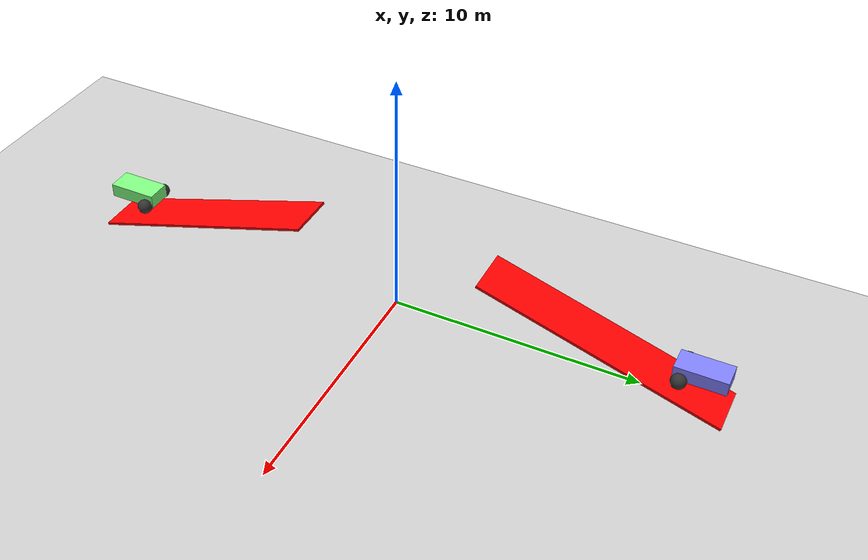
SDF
<?xml version="1.0" ?>
<sdf version="1.6">
  <world name="car_collision">
    <physics name="1ms" type="bullet">
      <max_step_size>0.001</max_step_size>
      <real_time_factor>1.0</real_time_factor>
    </physics>
    <plugin
      filename="libignition-gazebo-physics-system.so"
      name="ignition::gazebo::systems::Physics">
    </plugin>
    <plugin
      filename="libignition-gazebo-user-commands-system.so"
      name="ignition::gazebo::systems::UserCommands">
    </plugin>
    <plugin
      filename="libignition-gazebo-scene-broadcaster-system.so"
      name="ignition::gazebo::systems::SceneBroadcaster">
    </plugin>

    <gui fullscreen="0">

      <!-- 3D scene -->
      <plugin filename="GzScene3D" name="3D View">
        <ignition-gui>
          <title>3D View</title>
          <property type="bool" key="showTitleBar">false</property>
          <property type="string" key="state">docked</property>
        </ignition-gui>

        <engine>ogre2</engine>
        <scene>scene</scene>
        <ambient_light>0.4 0.4 0.4</ambient_light>
        <background_color>0.8 0.8 0.8</background_color>
        <camera_pose>-6 0 6 0 0.5 0</camera_pose>
      </plugin>

      <!-- World control -->
      <plugin filename="WorldControl" name="World control">
        <ignition-gui>
          <title>World control</title>
          <property type="bool" key="showTitleBar">false</property>
          <property type="bool" key="resizable">false</property>
          <property type="double" key="height">72</property>
          <property type="double" key="width">121</property>
          <property type="double" key="z">1</property>

          <property type="string" key="state">floating</property>
          <anchors target="3D View">
            <line own="left" target="left"/>
            <line own="bottom" target="bottom"/>
          </anchors>
        </ignition-gui>

        <play_pause>true</play_pause>
        <step>true</step>
        <start_paused>true</start_paused>
        <service>/world/car_collision/control</service>
        <stats_topic>/world/car_collision/stats</stats_topic>

      </plugin>

      <!-- World statistics -->
      <plugin filename="WorldStats" name="World stats">
        <ignition-gui>
          <title>World stats</title>
          <property type="bool" key="showTitleBar">false</property>
          <property type="bool" key="resizable">false</property>
          <property type="double" key="height">110</property>
          <property type="double" key="width">290</property>
          <property type="double" key="z">1</property>

          <property type="string" key="state">floating</property>
          <anchors target="3D View">
            <line own="right" target="right"/>
            <line own="bottom" target="bottom"/>
          </anchors>
        </ignition-gui>

        <sim_time>true</sim_time>
        <real_time>true</real_time>
        <real_time_factor>true</real_time_factor>
        <iterations>true</iterations>
        <topic>/world/car_collision/stats</topic>

      </plugin>

    </gui>

    <light type="directional" name="sun">
      <cast_shadows>true</cast_shadows>
      <pose>0 0 10 0 0 0</pose>
      <diffuse>1 1 1 1</diffuse>
      <specular>0.5 0.5 0.5 1</specular>
      <attenuation>
        <range>1000</range>
        <constant>0.9</constant>
        <linear>0.01</linear>
        <quadratic>0.001</quadratic>
      </attenuation>
      <direction>-0.5 0.1 -0.9</direction>
    </light>

    <model name="ground_plane">
      <static>true</static>
      <link name="link">
        <collision name="collision">
          <geometry>
            <plane>
              <normal>0 0 1</normal>
            </plane>
          </geometry>
          <surface>
            <bounce>
              <restitution_coefficient>0</restitution_coefficient>
            </bounce>
          </surface>
        </collision>
        <visual name="visual">
          <geometry>
            <plane>
              <normal>0 0 1</normal>
              <size>100 100</size>
            </plane>
          </geometry>
          <material>
            <ambient>0.8 0.8 0.8 1</ambient>
            <diffuse>0.8 0.8 0.8 1</diffuse>
            <specular>0.8 0.8 0.8 1</specular>
          </material>
        </visual>
      </link>
    </model>

    <model name="ramp">
      <static>true</static>
      <pose>0 8.5 1.5 -0.3 0 0</pose>
      <link name="box_link">
        <inertial>
          <inertia>
            <ixx>1</ixx>
            <ixy>0</ixy>
            <ixz>0</ixz>
            <iyy>1</iyy>
            <iyz>0</iyz>
            <izz>1</izz>
          </inertia>
          <mass>1.0</mass>
        </inertial>
        <collision name="box_collision">
          <geometry>
            <box>
              <size>2 10 0.1</size>
            </box>
          </geometry>
        </collision>

        <visual name="box_visual">
          <geometry>
            <box>
              <size>2 10 0.1</size>
            </box>
          </geometry>
          <material>
            <ambient>1 0 0 1</ambient>
            <diffuse>1 0 0 1</diffuse>
            <specular>1 0 0 1</specular>
          </material>
        </visual>
      </link>
    </model>

    <model name="ramp2">
      <static>true</static>
      <pose>0 -8.5 1.5 0.3 0 0</pose>
      <link name="box_link">
        <inertial>
          <inertia>
            <ixx>1</ixx>
            <ixy>0</ixy>
            <ixz>0</ixz>
            <iyy>1</iyy>
            <iyz>0</iyz>
            <izz>1</izz>
          </inertia>
          <mass>1.0</mass>
        </inertial>
        <collision name="box_collision">
          <geometry>
            <box>
              <size>2 10 0.1</size>
            </box>
          </geometry>
        </collision>

        <visual name="box_visual">
          <geometry>
            <box>
              <size>2 10 0.1</size>
            </box>
          </geometry>
          <material>
            <ambient>1 0 0 1</ambient>
            <diffuse>1 0 0 1</diffuse>
            <specular>1 0 0 1</specular>
          </material>
        </visual>
      </link>
    </model>

    <model name='vehicle_blue'>
      <pose>0 12 1.325 0 -0 -1.5708</pose>

      <link name='chassis'>
        <pose>-0.151427 -0 0.175 0 -0 0</pose>
        <inertial>
          <mass>1.14395</mass>
          <inertia>
            <ixx>0.126164</ixx>
            <ixy>0</ixy>
            <ixz>0</ixz>
            <iyy>0.416519</iyy>
            <iyz>0</iyz>
            <izz>0.481014</izz>
          </inertia>
        </inertial>
        <visual name='visual'>
          <geometry>
            <box>
              <size>2.01142 1 0.568726</size>
            </box>
          </geometry>
          <material>
            <ambient>0.5 0.5 1.0 1</ambient>
            <diffuse>0.5 0.5 1.0 1</diffuse>
            <specular>0.0 0.0 1.0 1</specular>
          </material>
        </visual>
        <collision name='collision'>
          <geometry>
            <box>
              <size>2.01142 1 0.568726</size>
            </box>
          </geometry>
          <surface>
            <bounce>
              <restitution_coefficient>1</restitution_coefficient>
            </bounce>
          </surface>
        </collision>
      </link>

      <link name='left_wheel'>
        <pose>0.554283 0.625029 -0.025 -1.5707 0 0</pose>
        <inertial>
          <mass>2</mass>
          <inertia>
            <ixx>0.145833</ixx>
            <ixy>0</ixy>
            <ixz>0</ixz>
            <iyy>0.145833</iyy>
            <iyz>0</iyz>
            <izz>0.125</izz>
          </inertia>
        </inertial>
        <visual name='visual'>
          <geometry>
            <sphere>
              <radius>0.3</radius>
            </sphere>
          </geometry>
          <material>
            <ambient>0.2 0.2 0.2 1</ambient>
            <diffuse>0.2 0.2 0.2 1</diffuse>
            <specular>0.2 0.2 0.2 1</specular>
          </material>
        </visual>
        <collision name='collision'>
          <geometry>
            <sphere>
              <radius>0.3</radius>
            </sphere>
          </geometry>
        </collision>
      </link>

      <link name='right_wheel'>
        <pose>0.554282 -0.625029 -0.025 -1.5707 0 0</pose>
        <inertial>
          <mass>2</mass>
          <inertia>
            <ixx>0.145833</ixx>
            <ixy>0</ixy>
            <ixz>0</ixz>
            <iyy>0.145833</iyy>
            <iyz>0</iyz>
            <izz>0.125</izz>
          </inertia>
        </inertial>
        <visual name='visual'>
          <geometry>
            <sphere>
              <radius>0.3</radius>
            </sphere>
          </geometry>
          <material>
            <ambient>0.2 0.2 0.2 1</ambient>
            <diffuse>0.2 0.2 0.2 1</diffuse>
            <specular>0.2 0.2 0.2 1</specular>
          </material>
        </visual>
        <collision name='collision'>
          <geometry>
            <sphere>
              <radius>0.3</radius>
            </sphere>
          </geometry>
        </collision>
      </link>

      <link name='caster'>
        <pose>-0.957138 -0 -0.125 0 -0 0</pose>
        <inertial>
          <mass>1</mass>
          <inertia>
            <ixx>0.1</ixx>
            <ixy>0</ixy>
            <ixz>0</ixz>
            <iyy>0.1</iyy>
            <iyz>0</iyz>
            <izz>0.1</izz>
          </inertia>
        </inertial>
        <visual name='visual'>
          <geometry>
            <sphere>
              <radius>0.2</radius>
            </sphere>
          </geometry>
          <material>
            <ambient>0.2 0.2 0.2 1</ambient>
            <diffuse>0.2 0.2 0.2 1</diffuse>
            <specular>0.2 0.2 0.2 1</specular>
          </material>
        </visual>
        <collision name='collision'>
          <geometry>
            <sphere>
              <radius>0.2</radius>
            </sphere>
          </geometry>
          <surface>
            <friction>
              <ode>
                <mu>0</mu>
              </ode>
            </friction>
          </surface>
        </collision>
      </link>

      <joint name='left_wheel_joint' type='revolute'>
        <parent>chassis</parent>
        <child>left_wheel</child>
        <axis>
          <xyz>0 0 1</xyz>
          <limit>
            <lower>-1.79769e+308</lower>
            <upper>1.79769e+308</upper>
          </limit>
        </axis>
      </joint>

      <joint name='right_wheel_joint' type='revolute'>
        <parent>chassis</parent>
        <child>right_wheel</child>
        <axis>
          <xyz>0 0 1</xyz>
          <limit>
            <lower>-1.79769e+308</lower>
            <upper>1.79769e+308</upper>
          </limit>
        </axis>
      </joint>

      <joint name='caster_wheel' type='ball'>
        <parent>chassis</parent>
        <child>caster</child>
      </joint>

      <plugin
        filename="libignition-gazebo-diff-drive-system.so"
        name="ignition::gazebo::systems::DiffDrive">
        <left_joint>left_wheel_joint</left_joint>
        <right_joint>right_wheel_joint</right_joint>
        <wheel_separation>1.25</wheel_separation>
        <wheel_radius>0.3</wheel_radius>
      </plugin>

    </model>

    <model name='vehicle_green'>
      <pose>0 -12 1.325 0 -0 1.5708</pose>

      <link name='chassis'>
        <pose>-0.151427 -0 0.175 0 -0 0</pose>
        <inertial>
          <mass>1.14395</mass>
          <inertia>
            <ixx>0.126164</ixx>
            <ixy>0</ixy>
            <ixz>0</ixz>
            <iyy>0.416519</iyy>
            <iyz>0</iyz>
            <izz>0.481014</izz>
          </inertia>
        </inertial>
        <visual name='visual'>
          <geometry>
            <box>
              <size>2.01142 1 0.568726</size>
            </box>
          </geometry>
          <material>
            <ambient>0.5 1.0 0.5 1</ambient>
            <diffuse>0.5 1.0 0.5 1</diffuse>
            <specular>0.0 1.0 0.0 1</specular>
          </material>
        </visual>
        <collision name='collision'>
          <geometry>
            <box>
              <size>2.01142 1 0.568726</size>
            </box>
          </geometry>
          <surface>
            <bounce>
              <restitution_coefficient>1</restitution_coefficient>
            </bounce>
          </surface>
        </collision>
      </link>

      <link name='left_wheel'>
        <pose>0.554283 0.625029 -0.025 -1.5707 0 0</pose>
        <inertial>
          <mass>2</mass>
          <inertia>
            <ixx>0.145833</ixx>
            <ixy>0</ixy>
            <ixz>0</ixz>
            <iyy>0.145833</iyy>
            <iyz>0</iyz>
            <izz>0.125</izz>
          </inertia>
        </inertial>
        <visual name='visual'>
          <geometry>
            <sphere>
              <radius>0.3</radius>
            </sphere>
          </geometry>
          <material>
            <ambient>0.2 0.2 0.2 1</ambient>
            <diffuse>0.2 0.2 0.2 1</diffuse>
            <specular>0.2 0.2 0.2 1</specular>
          </material>
        </visual>
        <collision name='collision'>
          <geometry>
            <sphere>
              <radius>0.3</radius>
            </sphere>
          </geometry>
        </collision>
      </link>

      <link name='right_wheel'>
        <pose>0.554282 -0.625029 -0.025 -1.5707 0 0</pose>
        <inertial>
          <mass>2</mass>
          <inertia>
            <ixx>0.145833</ixx>
            <ixy>0</ixy>
            <ixz>0</ixz>
            <iyy>0.145833</iyy>
            <iyz>0</iyz>
            <izz>0.125</izz>
          </inertia>
        </inertial>
        <visual name='visual'>
          <geometry>
            <sphere>
              <radius>0.3</radius>
            </sphere>
          </geometry>
          <material>
            <ambient>0.2 0.2 0.2 1</ambient>
            <diffuse>0.2 0.2 0.2 1</diffuse>
            <specular>0.2 0.2 0.2 1</specular>
          </material>
        </visual>
        <collision name='collision'>
          <geometry>
            <sphere>
              <radius>0.3</radius>
            </sphere>
          </geometry>
        </collision>
      </link>

      <link name='caster'>
        <pose>-0.957138 -0 -0.125 0 -0 0</pose>
        <inertial>
          <mass>1</mass>
          <inertia>
            <ixx>0.1</ixx>
            <ixy>0</ixy>
            <ixz>0</ixz>
            <iyy>0.1</iyy>
            <iyz>0</iyz>
            <izz>0.1</izz>
          </inertia>
        </inertial>
        <visual name='visual'>
          <geometry>
            <sphere>
              <radius>0.2</radius>
            </sphere>
          </geometry>
          <material>
            <ambient>0.2 0.2 0.2 1</ambient>
            <diffuse>0.2 0.2 0.2 1</diffuse>
            <specular>0.2 0.2 0.2 1</specular>
          </material>
        </visual>
        <collision name='collision'>
          <geometry>
            <sphere>
              <radius>0.2</radius>
            </sphere>
          </geometry>
          <surface>
            <friction>
              <ode>
                <mu>0</mu>
              </ode>
            </friction>
          </surface>
        </collision>
      </link>

      <joint name='left_wheel_joint' type='revolute'>
        <parent>chassis</parent>
        <child>left_wheel</child>
        <axis>
          <xyz>0 0 1</xyz>
          <limit>
            <lower>-1.79769e+308</lower>
            <upper>1.79769e+308</upper>
          </limit>
        </axis>
      </joint>

      <joint name='right_wheel_joint' type='revolute'>
        <parent>chassis</parent>
        <child>right_wheel</child>
        <axis>
          <xyz>0 0 1</xyz>
          <limit>
            <lower>-1.79769e+308</lower>
            <upper>1.79769e+308</upper>
          </limit>
        </axis>
      </joint>

      <joint name='caster_wheel' type='ball'>
        <parent>chassis</parent>
        <child>caster</child>
      </joint>

      <plugin
        filename="libignition-gazebo-diff-drive-system.so"
        name="ignition::gazebo::systems::DiffDrive">
        <left_joint>left_wheel_joint</left_joint>
        <right_joint>right_wheel_joint</right_joint>
        <wheel_separation>1.25</wheel_separation>
        <wheel_radius>0.3</wheel_radius>
      </plugin>

    </model>

  </world>
</sdf>
